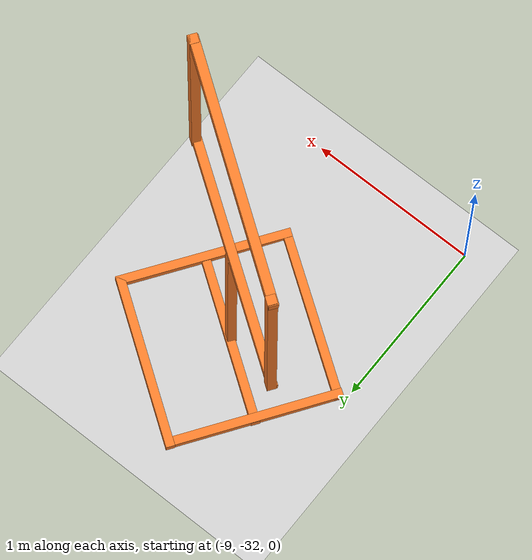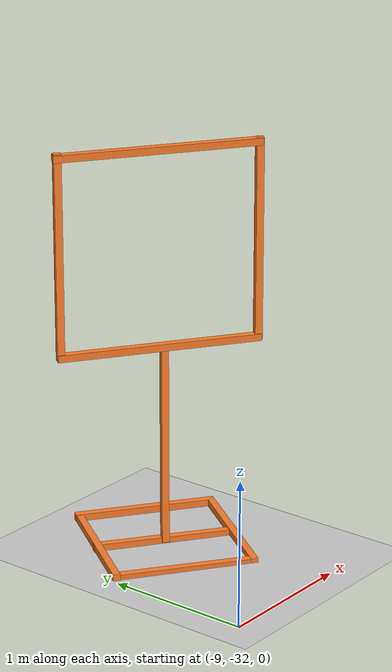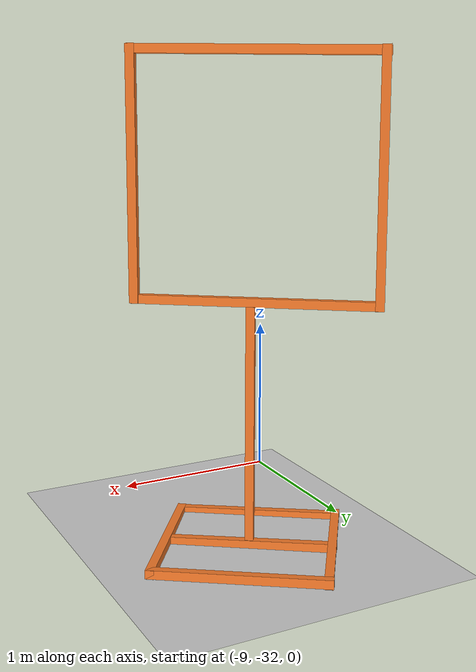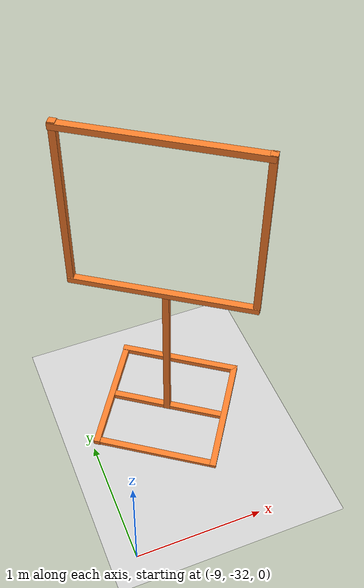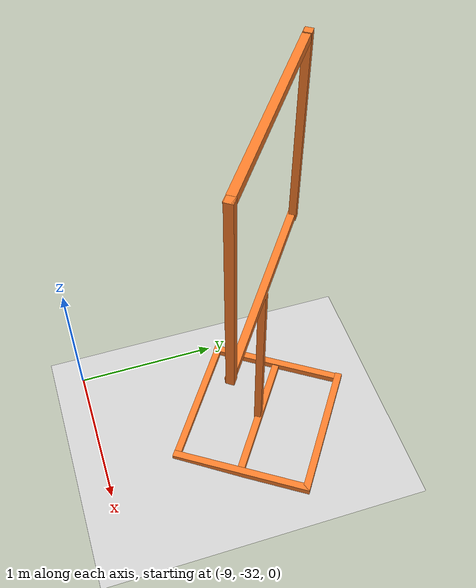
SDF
<sdf version="1.6">
 <world name="default">
  <model name="ground_plane">
   <static>1</static>
   <link name="link">
    <collision name="collision">
     <geometry><plane><normal>0 0 1</normal><size>100 100</size></plane></geometry>
     <surface><friction><ode><mu>100</mu><mu2>50</mu2></ode></friction></surface>
    </collision>
    <visual name="visual">
     <cast_shadows>0</cast_shadows>
     <geometry><plane><normal>0 0 1</normal><size>100 100</size></plane></geometry>
     <material>
      <script><uri>file://media/materials/scripts/gazebo.material</uri><name>Gazebo/Grey</name></script>
     </material>
    </visual>
    <velocity_decay><linear>0</linear><angular>0</angular></velocity_decay>
   </link>
  </model>
  <model name="closed_gate_clone_clone_clone">
   <link name="link">
    <inertial>
     <mass>1</mass>
     <inertia>
      <ixx>0.166667</ixx>
      <ixy>0</ixy>
      <ixz>0</ixz>
      <iyy>0.166667</iyy>
      <iyz>0</iyz>
      <izz>0.166667</izz>
     </inertia>
    </inertial>
    <pose>0.404756 -0.715724 1.41623 0 -0 0</pose>
    <visual name="visual">
     <geometry><box><size>0.05 0.05 1.4</size></box></geometry>
     <material>
      <script><name>Gazebo/Grey</name><uri>file://media/materials/scripts/gazebo.material</uri></script>
      <shader type="vertex"><normal_map>__default__</normal_map></shader>
      <ambient>0.976 0.484 0.164 1</ambient>
      <diffuse>0.976 0.484 0.164 1</diffuse>
      <specular>0.01 0.01 0.01 1</specular>
      <emissive>0 0 0 1</emissive>
     </material>
    </visual>
    <collision name="collision">
     <geometry><box><size>0.05 0.05 1.4</size></box></geometry>
     <surface>
      <friction>
       <ode><mu>1</mu><mu2>1</mu2><fdir1>0 0 0</fdir1><slip1>0</slip1><slip2>0</slip2></ode>
       <torsional>
        <coefficient>1</coefficient>
        <patch_radius>0</patch_radius>
        <surface_radius>0</surface_radius>
        <use_patch_radius>1</use_patch_radius>
        <ode><slip>0</slip></ode>
       </torsional>
      </friction>
      <bounce><restitution_coefficient>0</restitution_coefficient><threshold>1e+06</threshold></bounce>
      <contact>
       <collide_without_contact>0</collide_without_contact>
       <collide_without_contact_bitmask>1</collide_without_contact_bitmask>
       <collide_bitmask>1</collide_bitmask>
       <ode>
        <soft_cfm>0</soft_cfm>
        <soft_erp>0.2</soft_erp>
        <kp>1e+13</kp>
        <kd>1</kd>
        <max_vel>0.01</max_vel>
        <min_depth>0</min_depth>
       </ode>
       <bullet>
        <split_impulse>1</split_impulse>
        <split_impulse_penetration_threshold>-0.01</split_impulse_penetration_threshold>
        <soft_cfm>0</soft_cfm>
        <soft_erp>0.2</soft_erp>
        <kp>1e+13</kp>
        <kd>1</kd>
       </bullet>
      </contact>
     </surface>
    </collision>
   </link>
   <link name="link_clone_0_clone_0">
    <inertial>
     <mass>1</mass>
     <inertia>
      <ixx>0.166667</ixx>
      <ixy>0</ixy>
      <ixz>0</ixz>
      <iyy>0.166667</iyy>
      <iyz>0</iyz>
      <izz>0.166667</izz>
     </inertia>
    </inertial>
    <pose>1.11096 -0.693594 -0.667388 -1.57955 0.044957 -1.56415</pose>
    <visual name="visual">
     <geometry><box><size>0.05 0.05 1</size></box></geometry>
     <material>
      <script><name>Gazebo/Grey</name><uri>file://media/materials/scripts/gazebo.material</uri></script>
      <shader type="vertex"><normal_map>__default__</normal_map></shader>
      <ambient>0.976 0.484 0.164 1</ambient>
      <diffuse>0.976 0.484 0.164 1</diffuse>
      <specular>0.01 0.01 0.01 1</specular>
      <emissive>0 0 0 1</emissive>
     </material>
    </visual>
    <collision name="collision">
     <geometry><box><size>0.05 0.05 1</size></box></geometry>
     <surface>
      <friction>
       <ode><mu>1</mu><mu2>1</mu2><fdir1>0 0 0</fdir1><slip1>0</slip1><slip2>0</slip2></ode>
       <torsional>
        <coefficient>1</coefficient>
        <patch_radius>0</patch_radius>
        <surface_radius>0</surface_radius>
        <use_patch_radius>1</use_patch_radius>
        <ode><slip>0</slip></ode>
       </torsional>
      </friction>
      <bounce><restitution_coefficient>0</restitution_coefficient><threshold>1e+06</threshold></bounce>
      <contact>
       <collide_without_contact>0</collide_without_contact>
       <collide_without_contact_bitmask>1</collide_without_contact_bitmask>
       <collide_bitmask>1</collide_bitmask>
       <ode>
        <soft_cfm>0</soft_cfm>
        <soft_erp>0.2</soft_erp>
        <kp>1e+13</kp>
        <kd>1</kd>
        <max_vel>0.01</max_vel>
        <min_depth>0</min_depth>
       </ode>
       <bullet>
        <split_impulse>1</split_impulse>
        <split_impulse_penetration_threshold>-0.01</split_impulse_penetration_threshold>
        <soft_cfm>0</soft_cfm>
        <soft_erp>0.2</soft_erp>
        <kp>1e+13</kp>
        <kd>1</kd>
       </bullet>
      </contact>
     </surface>
    </collision>
   </link>
   <link name="link_clone_0_clone_0_clone">
    <inertial>
     <mass>1</mass>
     <inertia>
      <ixx>0.166667</ixx>
      <ixy>0</ixy>
      <ixz>0</ixz>
      <iyy>0.166667</iyy>
      <iyz>0</iyz>
      <izz>0.166667</izz>
     </inertia>
    </inertial>
    <pose>0.637485 -0.695511 -0.656732 -1.55146 -0.019345 0.017432</pose>
    <visual name="visual">
     <geometry><box><size>0.05 0.05 1</size></box></geometry>
     <material>
      <script><name>Gazebo/Grey</name><uri>file://media/materials/scripts/gazebo.material</uri></script>
      <shader type="vertex"><normal_map>__default__</normal_map></shader>
      <ambient>0.976 0.484 0.164 1</ambient>
      <diffuse>0.976 0.484 0.164 1</diffuse>
      <specular>0.01 0.01 0.01 1</specular>
      <emissive>0 0 0 1</emissive>
     </material>
    </visual>
    <collision name="collision">
     <geometry><box><size>0.05 0.05 1</size></box></geometry>
     <surface>
      <friction>
       <ode><mu>1</mu><mu2>1</mu2><fdir1>0 0 0</fdir1><slip1>0</slip1><slip2>0</slip2></ode>
       <torsional>
        <coefficient>1</coefficient>
        <patch_radius>0</patch_radius>
        <surface_radius>0</surface_radius>
        <use_patch_radius>1</use_patch_radius>
        <ode><slip>0</slip></ode>
       </torsional>
      </friction>
      <bounce><restitution_coefficient>0</restitution_coefficient><threshold>1e+06</threshold></bounce>
      <contact>
       <collide_without_contact>0</collide_without_contact>
       <collide_without_contact_bitmask>1</collide_without_contact_bitmask>
       <collide_bitmask>1</collide_bitmask>
       <ode>
        <soft_cfm>0</soft_cfm>
        <soft_erp>0.2</soft_erp>
        <kp>1e+13</kp>
        <kd>1</kd>
        <max_vel>0.01</max_vel>
        <min_depth>0</min_depth>
       </ode>
       <bullet>
        <split_impulse>1</split_impulse>
        <split_impulse_penetration_threshold>-0.01</split_impulse_penetration_threshold>
        <soft_cfm>0</soft_cfm>
        <soft_erp>0.2</soft_erp>
        <kp>1e+13</kp>
        <kd>1</kd>
       </bullet>
      </contact>
     </surface>
    </collision>
   </link>
   <link name="link_clone_0_clone_0_clone_0">
    <inertial>
     <mass>1</mass>
     <inertia>
      <ixx>0.166667</ixx>
      <ixy>0</ixy>
      <ixz>0</ixz>
      <iyy>0.166667</iyy>
      <iyz>0</iyz>
      <izz>0.166667</izz>
     </inertia>
    </inertial>
    <pose>1.12077 -1.16283 -0.677317 -1.57839 0.053451 -1.56287</pose>
    <visual name="visual">
     <geometry><box><size>0.05 0.05 1</size></box></geometry>
     <material>
      <script><name>Gazebo/Grey</name><uri>file://media/materials/scripts/gazebo.material</uri></script>
      <shader type="vertex"><normal_map>__default__</normal_map></shader>
      <ambient>0.976 0.484 0.164 1</ambient>
      <diffuse>0.976 0.484 0.164 1</diffuse>
      <specular>0.01 0.01 0.01 1</specular>
      <emissive>0 0 0 1</emissive>
     </material>
    </visual>
    <collision name="collision">
     <geometry><box><size>0.05 0.05 1</size></box></geometry>
     <surface>
      <friction>
       <ode><mu>1</mu><mu2>1</mu2><fdir1>0 0 0</fdir1><slip1>0</slip1><slip2>0</slip2></ode>
       <torsional>
        <coefficient>1</coefficient>
        <patch_radius>0</patch_radius>
        <surface_radius>0</surface_radius>
        <use_patch_radius>1</use_patch_radius>
        <ode><slip>0</slip></ode>
       </torsional>
      </friction>
      <bounce><restitution_coefficient>0</restitution_coefficient><threshold>1e+06</threshold></bounce>
      <contact>
       <collide_without_contact>0</collide_without_contact>
       <collide_without_contact_bitmask>1</collide_without_contact_bitmask>
       <collide_bitmask>1</collide_bitmask>
       <ode>
        <soft_cfm>0</soft_cfm>
        <soft_erp>0.2</soft_erp>
        <kp>1e+13</kp>
        <kd>1</kd>
        <max_vel>0.01</max_vel>
        <min_depth>0</min_depth>
       </ode>
       <bullet>
        <split_impulse>1</split_impulse>
        <split_impulse_penetration_threshold>-0.01</split_impulse_penetration_threshold>
        <soft_cfm>0</soft_cfm>
        <soft_erp>0.2</soft_erp>
        <kp>1e+13</kp>
        <kd>1</kd>
       </bullet>
      </contact>
     </surface>
    </collision>
   </link>
   <link name="link_clone_0_clone_0_clone_2">
    <inertial>
     <mass>1</mass>
     <inertia>
      <ixx>0.166667</ixx>
      <ixy>0</ixy>
      <ixz>0</ixz>
      <iyy>0.166667</iyy>
      <iyz>0</iyz>
      <izz>0.166667</izz>
     </inertia>
    </inertial>
    <pose>1.10088 -0.214462 -0.645898 -1.57451 0.053447 -1.56287</pose>
    <visual name="visual">
     <geometry><box><size>0.05 0.05 1</size></box></geometry>
     <material>
      <script><name>Gazebo/Grey</name><uri>file://media/materials/scripts/gazebo.material</uri></script>
      <shader type="vertex"><normal_map>__default__</normal_map></shader>
      <ambient>0.976 0.484 0.164 1</ambient>
      <diffuse>0.976 0.484 0.164 1</diffuse>
      <specular>0.01 0.01 0.01 1</specular>
      <emissive>0 0 0 1</emissive>
     </material>
    </visual>
    <collision name="collision">
     <geometry><box><size>0.05 0.05 1</size></box></geometry>
     <surface>
      <friction>
       <ode><mu>1</mu><mu2>1</mu2><fdir1>0 0 0</fdir1><slip1>0</slip1><slip2>0</slip2></ode>
       <torsional>
        <coefficient>1</coefficient>
        <patch_radius>0</patch_radius>
        <surface_radius>0</surface_radius>
        <use_patch_radius>1</use_patch_radius>
        <ode><slip>0</slip></ode>
       </torsional>
      </friction>
      <bounce><restitution_coefficient>0</restitution_coefficient><threshold>1e+06</threshold></bounce>
      <contact>
       <collide_without_contact>0</collide_without_contact>
       <collide_without_contact_bitmask>1</collide_without_contact_bitmask>
       <collide_bitmask>1</collide_bitmask>
       <ode>
        <soft_cfm>0</soft_cfm>
        <soft_erp>0.2</soft_erp>
        <kp>1e+13</kp>
        <kd>1</kd>
        <max_vel>0.01</max_vel>
        <min_depth>0</min_depth>
       </ode>
       <bullet>
        <split_impulse>1</split_impulse>
        <split_impulse_penetration_threshold>-0.01</split_impulse_penetration_threshold>
        <soft_cfm>0</soft_cfm>
        <soft_erp>0.2</soft_erp>
        <kp>1e+13</kp>
        <kd>1</kd>
       </bullet>
      </contact>
     </surface>
    </collision>
   </link>
   <link name="link_clone_0_clone_0_clone_clone">
    <inertial>
     <mass>1</mass>
     <inertia>
      <ixx>0.166667</ixx>
      <ixy>0</ixy>
      <ixz>0</ixz>
      <iyy>0.166667</iyy>
      <iyz>0</iyz>
      <izz>0.166667</izz>
     </inertia>
    </inertial>
    <pose>1.59453 -0.684923 -0.663241 -1.53838 -0.023075 0.018345</pose>
    <visual name="visual">
     <geometry><box><size>0.05 0.05 1</size></box></geometry>
     <material>
      <script><name>Gazebo/Grey</name><uri>file://media/materials/scripts/gazebo.material</uri></script>
      <shader type="vertex"><normal_map>__default__</normal_map></shader>
      <ambient>0.976 0.484 0.164 1</ambient>
      <diffuse>0.976 0.484 0.164 1</diffuse>
      <specular>0.01 0.01 0.01 1</specular>
      <emissive>0 0 0 1</emissive>
     </material>
    </visual>
    <collision name="collision">
     <geometry><box><size>0.05 0.05 1</size></box></geometry>
     <surface>
      <friction>
       <ode><mu>1</mu><mu2>1</mu2><fdir1>0 0 0</fdir1><slip1>0</slip1><slip2>0</slip2></ode>
       <torsional>
        <coefficient>1</coefficient>
        <patch_radius>0</patch_radius>
        <surface_radius>0</surface_radius>
        <use_patch_radius>1</use_patch_radius>
        <ode><slip>0</slip></ode>
       </torsional>
      </friction>
      <bounce><restitution_coefficient>0</restitution_coefficient><threshold>1e+06</threshold></bounce>
      <contact>
       <collide_without_contact>0</collide_without_contact>
       <collide_without_contact_bitmask>1</collide_without_contact_bitmask>
       <collide_bitmask>1</collide_bitmask>
       <ode>
        <soft_cfm>0</soft_cfm>
        <soft_erp>0.2</soft_erp>
        <kp>1e+13</kp>
        <kd>1</kd>
        <max_vel>0.01</max_vel>
        <min_depth>0</min_depth>
       </ode>
       <bullet>
        <split_impulse>1</split_impulse>
        <split_impulse_penetration_threshold>-0.01</split_impulse_penetration_threshold>
        <soft_cfm>0</soft_cfm>
        <soft_erp>0.2</soft_erp>
        <kp>1e+13</kp>
        <kd>1</kd>
       </bullet>
      </contact>
     </surface>
    </collision>
   </link>
   <link name="link_clone_0_clone_1">
    <inertial>
     <mass>1</mass>
     <inertia>
      <ixx>0.166667</ixx>
      <ixy>0</ixy>
      <ixz>0</ixz>
      <iyy>0.166667</iyy>
      <iyz>0</iyz>
      <izz>0.166667</izz>
     </inertia>
    </inertial>
    <pose>1.08198 -0.717602 0.744079 -1.56201 0.04483 -1.56244</pose>
    <visual name="visual">
     <geometry><box><size>0.05 0.05 1.4</size></box></geometry>
     <material>
      <script><name>Gazebo/Grey</name><uri>file://media/materials/scripts/gazebo.material</uri></script>
      <shader type="vertex"><normal_map>__default__</normal_map></shader>
      <ambient>0.976 0.484 0.164 1</ambient>
      <diffuse>0.976 0.484 0.164 1</diffuse>
      <specular>0.01 0.01 0.01 1</specular>
      <emissive>0 0 0 1</emissive>
     </material>
    </visual>
    <collision name="collision">
     <geometry><box><size>0.05 0.05 1.4</size></box></geometry>
     <surface>
      <friction>
       <ode><mu>1</mu><mu2>1</mu2><fdir1>0 0 0</fdir1><slip1>0</slip1><slip2>0</slip2></ode>
       <torsional>
        <coefficient>1</coefficient>
        <patch_radius>0</patch_radius>
        <surface_radius>0</surface_radius>
        <use_patch_radius>1</use_patch_radius>
        <ode><slip>0</slip></ode>
       </torsional>
      </friction>
      <bounce><restitution_coefficient>0</restitution_coefficient><threshold>1e+06</threshold></bounce>
      <contact>
       <collide_without_contact>0</collide_without_contact>
       <collide_without_contact_bitmask>1</collide_without_contact_bitmask>
       <collide_bitmask>1</collide_bitmask>
       <ode>
        <soft_cfm>0</soft_cfm>
        <soft_erp>0.2</soft_erp>
        <kp>1e+13</kp>
        <kd>1</kd>
        <max_vel>0.01</max_vel>
        <min_depth>0</min_depth>
       </ode>
       <bullet>
        <split_impulse>1</split_impulse>
        <split_impulse_penetration_threshold>-0.01</split_impulse_penetration_threshold>
        <soft_cfm>0</soft_cfm>
        <soft_erp>0.2</soft_erp>
        <kp>1e+13</kp>
        <kd>1</kd>
       </bullet>
      </contact>
     </surface>
    </collision>
   </link>
   <link name="link_clone_0_clone_1_clone">
    <inertial>
     <mass>1</mass>
     <inertia>
      <ixx>0.166667</ixx>
      <ixy>0</ixy>
      <ixz>0</ixz>
      <iyy>0.166667</iyy>
      <iyz>0</iyz>
      <izz>0.166667</izz>
     </inertia>
    </inertial>
    <pose>1.07529 -0.719849 2.09328 -1.55888 0.053444 -1.57124</pose>
    <visual name="visual">
     <geometry><box><size>0.05 0.05 1.4</size></box></geometry>
     <material>
      <script><name>Gazebo/Grey</name><uri>file://media/materials/scripts/gazebo.material</uri></script>
      <shader type="vertex"><normal_map>__default__</normal_map></shader>
      <ambient>0.976 0.484 0.164 1</ambient>
      <diffuse>0.976 0.484 0.164 1</diffuse>
      <specular>0.01 0.01 0.01 1</specular>
      <emissive>0 0 0 1</emissive>
     </material>
    </visual>
    <collision name="collision">
     <geometry><box><size>0.05 0.05 1.4</size></box></geometry>
     <surface>
      <friction>
       <ode><mu>1</mu><mu2>1</mu2><fdir1>0 0 0</fdir1><slip1>0</slip1><slip2>0</slip2></ode>
       <torsional>
        <coefficient>1</coefficient>
        <patch_radius>0</patch_radius>
        <surface_radius>0</surface_radius>
        <use_patch_radius>1</use_patch_radius>
        <ode><slip>0</slip></ode>
       </torsional>
      </friction>
      <bounce><restitution_coefficient>0</restitution_coefficient><threshold>1e+06</threshold></bounce>
      <contact>
       <collide_without_contact>0</collide_without_contact>
       <collide_without_contact_bitmask>1</collide_without_contact_bitmask>
       <collide_bitmask>1</collide_bitmask>
       <ode>
        <soft_cfm>0</soft_cfm>
        <soft_erp>0.2</soft_erp>
        <kp>1e+13</kp>
        <kd>1</kd>
        <max_vel>0.01</max_vel>
        <min_depth>0</min_depth>
       </ode>
       <bullet>
        <split_impulse>1</split_impulse>
        <split_impulse_penetration_threshold>-0.01</split_impulse_penetration_threshold>
        <soft_cfm>0</soft_cfm>
        <soft_erp>0.2</soft_erp>
        <kp>1e+13</kp>
        <kd>1</kd>
       </bullet>
      </contact>
     </surface>
    </collision>
   </link>
   <link name="link_clone_1">
    <inertial>
     <mass>1</mass>
     <inertia>
      <ixx>0.166667</ixx>
      <ixy>0</ixy>
      <ixz>0</ixz>
      <iyy>0.166667</iyy>
      <iyz>0</iyz>
      <izz>0.166667</izz>
     </inertia>
    </inertial>
    <pose>1.11167 -0.706269 0.02254 0.008527 -0.003582 0.001077</pose>
    <visual name="visual">
     <geometry><box><size>0.05 0.05 1.4</size></box></geometry>
     <material>
      <script><name>Gazebo/Grey</name><uri>file://media/materials/scripts/gazebo.material</uri></script>
      <shader type="vertex"><normal_map>__default__</normal_map></shader>
      <ambient>0.976 0.484 0.164 1</ambient>
      <diffuse>0.976 0.484 0.164 1</diffuse>
      <specular>0.01 0.01 0.01 1</specular>
      <emissive>0 0 0 1</emissive>
     </material>
    </visual>
    <collision name="collision">
     <geometry><box><size>0.05 0.05 1.4</size></box></geometry>
     <surface>
      <friction>
       <ode><mu>1</mu><mu2>1</mu2><fdir1>0 0 0</fdir1><slip1>0</slip1><slip2>0</slip2></ode>
       <torsional>
        <coefficient>1</coefficient>
        <patch_radius>0</patch_radius>
        <surface_radius>0</surface_radius>
        <use_patch_radius>1</use_patch_radius>
        <ode><slip>0</slip></ode>
       </torsional>
      </friction>
      <bounce><restitution_coefficient>0</restitution_coefficient><threshold>1e+06</threshold></bounce>
      <contact>
       <collide_without_contact>0</collide_without_contact>
       <collide_without_contact_bitmask>1</collide_without_contact_bitmask>
       <collide_bitmask>1</collide_bitmask>
       <ode>
        <soft_cfm>0</soft_cfm>
        <soft_erp>0.2</soft_erp>
        <kp>1e+13</kp>
        <kd>1</kd>
        <max_vel>0.01</max_vel>
        <min_depth>0</min_depth>
       </ode>
       <bullet>
        <split_impulse>1</split_impulse>
        <split_impulse_penetration_threshold>-0.01</split_impulse_penetration_threshold>
        <soft_cfm>0</soft_cfm>
        <soft_erp>0.2</soft_erp>
        <kp>1e+13</kp>
        <kd>1</kd>
       </bullet>
      </contact>
     </surface>
    </collision>
   </link>
   <link name="link_clone_7">
    <inertial>
     <mass>1</mass>
     <inertia>
      <ixx>0.166667</ixx>
      <ixy>0</ixy>
      <ixz>0</ixz>
      <iyy>0.166667</iyy>
      <iyz>0</iyz>
      <izz>0.166667</izz>
     </inertia>
    </inertial>
    <pose>1.75876 -0.711707 1.42733 0.008527 -0.003582 0.001077</pose>
    <visual name="visual">
     <geometry><box><size>0.05 0.05 1.4</size></box></geometry>
     <material>
      <script><name>Gazebo/Grey</name><uri>file://media/materials/scripts/gazebo.material</uri></script>
      <shader type="vertex"><normal_map>__default__</normal_map></shader>
      <ambient>0.976 0.484 0.164 1</ambient>
      <diffuse>0.976 0.484 0.164 1</diffuse>
      <specular>0.01 0.01 0.01 1</specular>
      <emissive>0 0 0 1</emissive>
     </material>
    </visual>
    <collision name="collision">
     <geometry><box><size>0.05 0.05 1.4</size></box></geometry>
     <surface>
      <friction>
       <ode><mu>1</mu><mu2>1</mu2><fdir1>0 0 0</fdir1><slip1>0</slip1><slip2>0</slip2></ode>
       <torsional>
        <coefficient>1</coefficient>
        <patch_radius>0</patch_radius>
        <surface_radius>0</surface_radius>
        <use_patch_radius>1</use_patch_radius>
        <ode><slip>0</slip></ode>
       </torsional>
      </friction>
      <bounce><restitution_coefficient>0</restitution_coefficient><threshold>1e+06</threshold></bounce>
      <contact>
       <collide_without_contact>0</collide_without_contact>
       <collide_without_contact_bitmask>1</collide_without_contact_bitmask>
       <collide_bitmask>1</collide_bitmask>
       <ode>
        <soft_cfm>0</soft_cfm>
        <soft_erp>0.2</soft_erp>
        <kp>1e+13</kp>
        <kd>1</kd>
        <max_vel>0.01</max_vel>
        <min_depth>0</min_depth>
       </ode>
       <bullet>
        <split_impulse>1</split_impulse>
        <split_impulse_penetration_threshold>-0.01</split_impulse_penetration_threshold>
        <soft_cfm>0</soft_cfm>
        <soft_erp>0.2</soft_erp>
        <kp>1e+13</kp>
        <kd>1</kd>
       </bullet>
      </contact>
     </surface>
    </collision>
   </link>
   <static>1</static>
   <pose>-8.80016 -29.6128 0.68342 0 0 -0.617302</pose>
  </model>
 </world>
</sdf>
